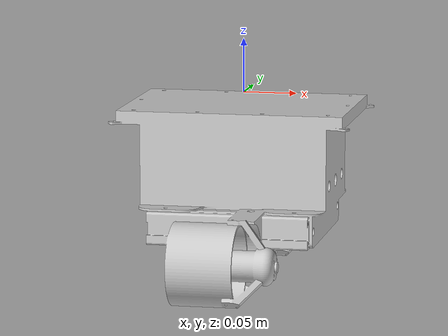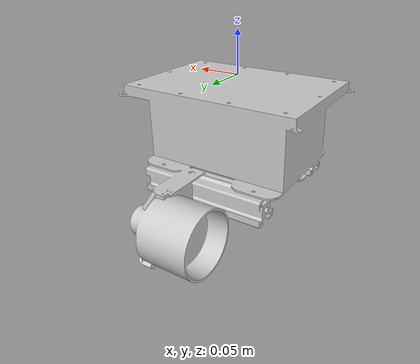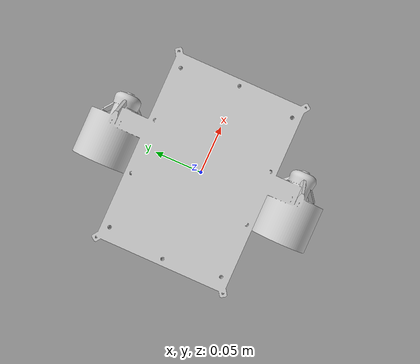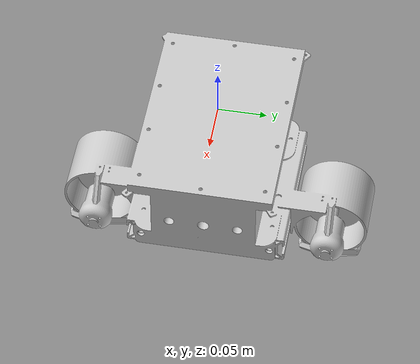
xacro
<?xml version="1.0"?>
<robot name="robot"
  xmlns:xacro="http://ros.org/wiki/xacro">
  <xacro:include filename="$(find robot_model)/urdf/common_properties.xacro"/>

  <!-- Enable multiple robots handling -->
  <xacro:arg name="robot_id" default=""/>
  <xacro:arg name="robot_prefix" default="agent"/>
  <xacro:arg name="robot_frame" default=""/>

  <link name="$(arg robot_prefix)$(arg robot_id)/$(arg robot_frame)">
    <visual>
      <origin xyz="0 0 -0.1" rpy="0 0 ${pi/2}"/>
      <geometry>
        <mesh filename="package://robot_model/meshes/robot.stl" scale="0.001 0.001 0.001"/>
      </geometry>
      <material name="light_grey"/>
    </visual>

    <collision>
      <origin xyz="0 0 -0.1" rpy="0 0 ${pi/2}"/>
      <geometry>
        <mesh filename="package://robot_model/meshes/robot.stl" scale="0.001 0.001 0.001"/>
      </geometry>
    </collision>
  </link>

</robot>

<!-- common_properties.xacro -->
<robot name="xacro_properties" xmlns:xacro="http://ros.org/wiki/xacro">

  <!-- Init color -->
  <material name="black">
    <color rgba="0.0 0.0 0.0 1.0"/>
  </material>

  <material name="dark">
    <color rgba="0.3 0.3 0.3 1.0"/>
  </material>
  <material name="light_black">
    <color rgba="0.4 0.4 0.4 1.0"/>
  </material>

  <material name="blue">
    <color rgba="0.0 0.0 0.8 1.0"/>
  </material>

  <material name="green">
    <color rgba="0.0 0.8 0.0 1.0"/>
  </material>

  <material name="grey">
    <color rgba="0.5 0.5 0.5 1.0"/>
  </material>

  <material name="orange">
    <color rgba="${255/255} ${108/255} ${10/255} 1.0"/>
  </material>

  <material name="brown">
    <color rgba="${222/255} ${207/255} ${195/255} 1.0"/>
  </material>

  <material name="red">
    <color rgba="0.8 0.0 0.0 1.0"/>
  </material>

  <material name="light_grey">
    <color rgba="0.8 0.8 0.8 1.0"/>
  </material>

  <material name="white">
    <color rgba="1.0 1.0 1.0 1.0"/>
  </material>
</robot>
